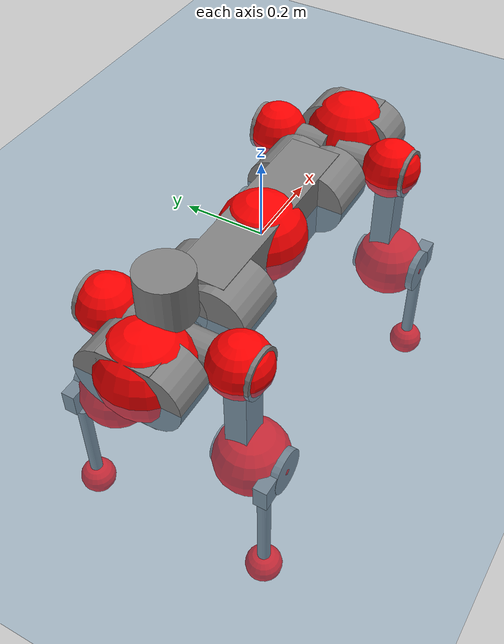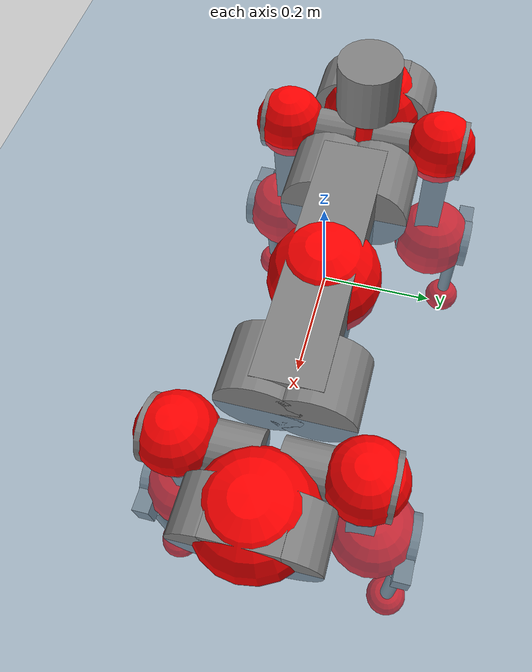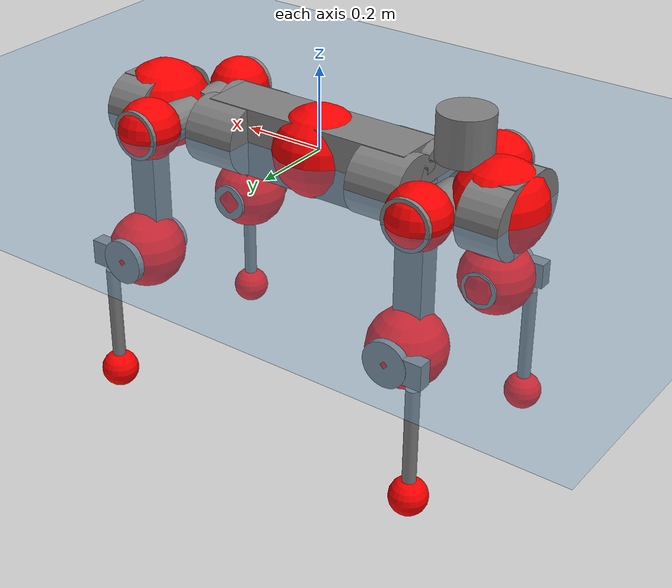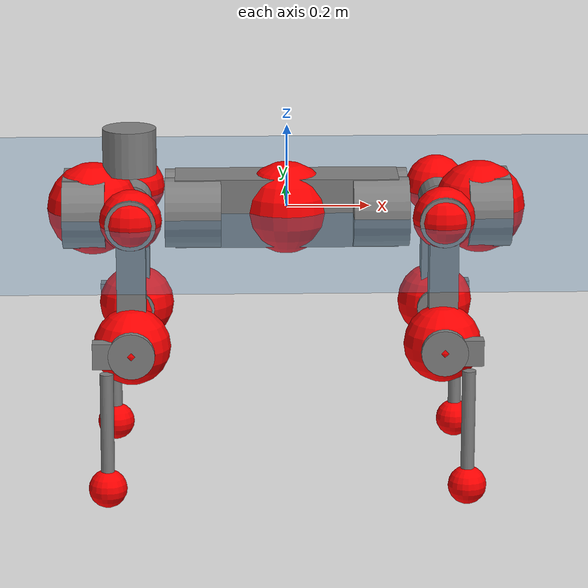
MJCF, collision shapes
<mujoco model="anymal_c">
  <compiler angle="radian" assetdir="assets" balanceinertia="true" inertiafromgeom="false"/>

  <option timestep="0.005" density="1.2" viscosity="2e-05"/>

  <size nkey="1"/>

  <visual>
    <quality shadowsize="8192"/>
    <map shadowclip="0.5"/>
  </visual>

  <default>
    <default class="/">
      <material specular="0" shininess="0.25"/>
      <geom contype="0" conaffinity="0" group="1" solref="-1000 -80"/>
      <site size="0.01 0.005 0.005" group="5"/>
      <general forcelimited="true" forcerange="-80 80" biastype="affine" gainprm="80" biasprm="0 -80 -2"/>
      <default class="anymal_c">
        <joint armature="0.01" damping="0.01" frictionloss="0.1"/>
        <default class="visual">
          <geom type="mesh" group="2"/>
          <default class="visual_zflip"/>
        </default>
        <default class="collision">
          <geom type="cylinder" group="3"/>
          <default class="foot">
            <geom size="0.03 0 0" type="sphere" condim="6" priority="1" friction="0.8 0.02 0.01" solimp="0.015 1 0.03"/>
          </default>
        </default>
      </default>
      <default class="reward_collision_sphere">
        <geom group="5" rgba="1 0 0 1"/>
      </default>
    </default>
  </default>

  <asset>
    <texture type="skybox" colorspace="auto" name="//unnamed_texture_0" builtin="gradient" rgb1="0.95 0.95 0.95" rgb2="0.95 0.95 0.95" width="100" height="600"/>
    <texture type="2d" colorspace="auto" name="texplane" builtin="checker" rgb1="0.345 0.575 0.748" rgb2="0.345 0.575 0.748" markrgb="1 1 1" width="512" height="512"/>
    <texture type="2d" colorspace="linear" name="base" file="base.png"/>
    <texture type="2d" colorspace="linear" name="top_shell" file="top_shell.png"/>
    <texture type="2d" colorspace="linear" name="bottom_shell" file="bottom_shell.png"/>
    <texture type="2d" colorspace="linear" name="remote" file="remote.png"/>
    <texture type="2d" colorspace="linear" name="hatch" file="hatch.png"/>
    <texture type="2d" colorspace="linear" name="handle" file="handle.png"/>
    <texture type="2d" colorspace="linear" name="face" file="face.png"/>
    <texture type="2d" colorspace="linear" name="battery" file="battery.png"/>
    <texture type="2d" colorspace="linear" name="lidar_cage" file="lidar_cage.png"/>
    <texture type="2d" colorspace="linear" name="depth_camera" file="depth_camera.png"/>
    <texture type="2d" colorspace="linear" name="wide_angle_camera" file="wide_angle_camera.png"/>
    <texture type="2d" colorspace="linear" name="lidar" file="lidar.png"/>
    <texture type="2d" colorspace="linear" name="drive" file="drive.png"/>
    <texture type="2d" colorspace="linear" name="hip_l" file="hip_l.png"/>
    <texture type="2d" colorspace="linear" name="shank_l" file="shank_l.png"/>
    <texture type="2d" colorspace="linear" name="foot" file="foot.png"/>
    <texture type="2d" colorspace="linear" name="thigh" file="thigh.png"/>
    <texture type="2d" colorspace="linear" name="shank_r" file="shank_r.png"/>
    <texture type="2d" colorspace="linear" name="hip_r" file="hip_r.png"/>
    <material name="MatPlane" class="/" texture="texplane" texuniform="true" texrepeat="2 2" specular="0.9" shininess="0.5"/>
    <material name="black_plastic" class="/" rgba="0.007 0.007 0.007 1"/>
    <material name="green" class="/" rgba="0.052 0.178 0.033 1"/>
    <material name="red" class="/" rgba="0.178 0.006 0.005 1"/>
    <material name="yellow" class="/" rgba="0.178 0.119 0.006 1"/>
    <material name="lwl" class="/" rgba="0.8 0.8 0.8 1"/>
    <material name="base" class="/" texture="base"/>
    <material name="top_shell" class="/" texture="top_shell"/>
    <material name="bottom_shell" class="/" texture="bottom_shell"/>
    <material name="hip_l" class="/" texture="hip_l"/>
    <material name="thigh" class="/" texture="thigh"/>
    <material name="shank_l" class="/" texture="shank_l"/>
    <material name="foot" class="/" texture="foot"/>
    <material name="hip_r" class="/" texture="hip_r"/>
    <material name="shank" class="/" texture="shank_r"/>
    <material name="hatch" class="/" texture="hatch"/>
    <material name="remote" class="/" texture="remote"/>
    <material name="handle" class="/" texture="handle"/>
    <material name="face" class="/" texture="face"/>
    <material name="depth_camera" class="/" texture="depth_camera"/>
    <material name="wide_angle_camera" class="/" texture="wide_angle_camera"/>
    <material name="battery" class="/" texture="battery"/>
    <material name="lidar_cage" class="/" texture="lidar_cage"/>
    <material name="lidar" class="/" texture="lidar"/>
    <material name="drive" class="/" texture="drive"/>
    <mesh name="base_0" class="/" file="base_0.obj"/>
    <mesh name="base_1" class="/" file="base_1.obj"/>
    <mesh name="base_2" class="/" file="base_2.obj"/>
    <mesh name="base_3" class="/" file="base_3.obj"/>
    <mesh name="base_4" class="/" file="base_4.obj"/>
    <mesh name="base_5" class="/" file="base_5.obj"/>
    <mesh name="top_shell" class="/" file="top_shell.obj"/>
    <mesh name="bottom_shell" class="/" file="bottom_shell.obj"/>
    <mesh name="remote" class="/" file="remote.obj"/>
    <mesh name="handle" class="/" file="handle.obj"/>
    <mesh name="face" class="/" file="face.obj"/>
    <mesh name="wide_angle_camera" class="/" file="wide_angle_camera.obj"/>
    <mesh name="depth_camera" class="/" file="depth_camera.obj"/>
    <mesh name="battery" class="/" file="battery.obj"/>
    <mesh name="lidar_cage" class="/" file="lidar_cage.obj"/>
    <mesh name="lidar" class="/" file="lidar.obj"/>
    <mesh name="drive" class="/" file="drive.obj"/>
    <mesh name="hip_l" class="/" file="hip_l.obj"/>
    <mesh name="thigh" class="/" file="thigh.obj"/>
    <mesh name="shank_l" class="/" file="shank_l.obj"/>
    <mesh name="foot" class="/" file="foot.obj"/>
    <mesh name="hip_r" class="/" file="hip_r.obj"/>
    <mesh name="hatch" class="/" file="hatch.obj"/>
    <mesh name="shank_r" class="/" file="shank_r.obj"/>
  </asset>

  <worldbody>
    <geom name="floor" class="/" size="100 100 0.125" type="plane" group="0" material="MatPlane"/>
    <light name="toplight_shadow" class="/" pos="0 0 5" dir="0.0990148 0.0990148 -0.990148" type="directional" ambient="0.04 0.04 0.04" diffuse="0.55 0.55 0.55" specular="0.12 0.12 0.12"/>
    <light name="toplight_fill" class="/" pos="0 0 5" dir="0.0990148 0.0990148 -0.990148" type="directional" castshadow="false" ambient="0.04 0.04 0.04" diffuse="0.3 0.3 0.3" specular="0.08 0.08 0.08"/>
    <body name="trunk" childclass="anymal_c" pos="-0.00104831 -9.4869e-06 -0.00282745" quat="1 0.000343679 0.000234815 -0.000252013">
      <inertial pos="-0.000229655 -0.00228967 0.0537607" quat="0.495429 0.502982 0.501901 0.499654" mass="15.4885" diaginertia="0.801012 0.0904559 0.306279"/>
      <joint name="//unnamed_joint_0" type="free" armature="0" damping="0" frictionloss="0"/>
      <geom name="//unnamed_geom_1" class="visual" material="green" mesh="base_0"/>
      <geom name="//unnamed_geom_2" class="visual" material="yellow" mesh="base_1"/>
      <geom name="//unnamed_geom_3" class="visual" material="red" mesh="base_2"/>
      <geom name="//unnamed_geom_4" class="visual" material="black_plastic" mesh="base_3"/>
      <geom name="//unnamed_geom_5" class="visual" material="lwl" mesh="base_4"/>
      <geom name="//unnamed_geom_6" class="visual" material="base" mesh="base_5"/>
      <geom name="trunk_1" class="collision" size="0.268024 0.0646955 0.0831799" type="box"/>
      <geom name="trunk_2" class="collision" size="0.0831799 0.067006" pos="0.225075 0.0472637 0" quat="0.707107 0 0.707107 0"/>
      <geom name="trunk_3" class="collision" size="0.0831799 0.067006" pos="-0.225075 0.0472637 0" quat="0.707107 0 0.707107 0"/>
      <geom name="trunk_4" class="collision" size="0.0831799 0.067006" pos="0.225075 -0.0472637 0" quat="0.707107 0 0.707107 0"/>
      <geom name="trunk_5" class="collision" size="0.0831799 0.067006" pos="-0.225075 -0.0472637 0" quat="0.707107 0 0.707107 0"/>
      <geom name="//unnamed_geom_12" class="visual" material="top_shell" mesh="top_shell"/>
      <geom name="//unnamed_geom_13" class="visual" material="bottom_shell" mesh="bottom_shell"/>
      <geom name="//unnamed_geom_14" class="visual" material="remote" mesh="remote"/>
      <geom name="//unnamed_geom_15" class="visual" material="handle" mesh="handle"/>
      <geom name="//unnamed_geom_16" class="visual" pos="0.428936 0 0" quat="1 0 0 0" material="face" mesh="face"/>
      <geom name="trunk_6" class="collision" size="0.0508321 0.0646955 0.0831799" pos="0.485851 0 0" type="box"/>
      <geom name="//unnamed_geom_18" class="collision" size="0.0831799 0.0508321" pos="0.485851 0.0472637 0" quat="0.707107 0 0.707107 0"/>
      <geom name="//unnamed_geom_19" class="collision" size="0.0831799 0.0508321" pos="0.485851 -0.0472637 0" quat="0.707107 0 0.707107 0"/>
      <geom name="//unnamed_geom_20" class="visual" pos="0.477729 0 -0.0312405" quat="0.965926 0 0.258819 0" material="depth_camera" mesh="depth_camera"/>
      <geom name="//unnamed_geom_21" class="visual" pos="0.530866 0 0.0159077" material="wide_angle_camera" mesh="wide_angle_camera"/>
      <geom name="//unnamed_geom_22" class="visual_zflip" pos="-0.428936 0 0" quat="0 0 0 1" material="face" mesh="face"/>
      <geom name="trunk_7" class="collision" size="0.0508321 0.0646955 0.0831799" pos="-0.485851 0 0" quat="0 0 0 1" type="box"/>
      <geom name="//unnamed_geom_24" class="collision" size="0.0831799 0.0508321" pos="-0.485851 -0.0472637 0" quat="0 -0.707107 0 0.707107"/>
      <geom name="//unnamed_geom_25" class="collision" size="0.0831799 0.0508321" pos="-0.485851 0.0472637 0" quat="0 -0.707107 0 0.707107"/>
      <geom name="//unnamed_geom_26" class="visual" pos="-0.477729 0 -0.0312405" quat="0 -0.258819 0 0.965926" material="depth_camera" mesh="depth_camera"/>
      <geom name="//unnamed_geom_27" class="visual_zflip" pos="-0.530866 0 0.0159077" quat="0 0 0 1" material="wide_angle_camera" mesh="wide_angle_camera"/>
      <geom name="//unnamed_geom_28" class="visual" material="battery" mesh="battery"/>
      <geom name="//unnamed_geom_29" class="visual" pos="0 0.0469075 0.0306583" quat="0.683013 -0.183013 0.183013 0.683013" material="depth_camera" mesh="depth_camera"/>
      <geom name="//unnamed_geom_30" class="visual" pos="0 -0.0469075 0.0306583" quat="0.683013 0.183013 0.183013 -0.683013" material="depth_camera" mesh="depth_camera"/>
      <geom name="//unnamed_geom_31" class="visual" pos="-0.376677 0 0.0781041" quat="1 0 0 0" material="lidar_cage" mesh="lidar_cage"/>
      <geom name="trunk_8" class="collision" size="0.0646955 0.0554533" pos="-0.376677 0 0.141862"/>
      <geom name="//unnamed_geom_33" class="visual" pos="-0.376677 -0.000141289 0.151107" quat="0.707107 0 0 -0.707107" material="lidar" mesh="lidar"/>
      <geom name="//unnamed_geom_34" class="visual" pos="0.310345 0.070358 -6.68346e-09" quat="0.258819 0.965926 0 0" material="drive" mesh="drive"/>
      <geom name="//unnamed_geom_35" class="visual" pos="0.310345 -0.070358 6.68346e-09" quat="0.258819 -0.965926 0 0" material="drive" mesh="drive"/>
      <geom name="//unnamed_geom_36" class="visual" pos="-0.310345 0.070358 6.68346e-09" quat="0 0 0.965926 -0.258819" material="drive" mesh="drive"/>
      <geom name="//unnamed_geom_37" class="visual" pos="-0.310345 -0.070358 -6.68346e-09" quat="0 0 -0.965926 -0.258819" material="drive" mesh="drive"/>
      <geom name="//unnamed_geom_38" class="visual" pos="0.12004 0 0.0775727" quat="1 0 0 0" material="hatch" mesh="hatch"/>
      <geom name="//unnamed_geom_39" class="reward_collision_sphere" size="0.110907"/>
      <geom name="//unnamed_geom_40" class="reward_collision_sphere" size="0.110907" pos="0.465672 0 0"/>
      <geom name="//unnamed_geom_41" class="reward_collision_sphere" size="0.110907" pos="-0.465672 0 0"/>
      <site name="imu" pos="0.251592 0.00943374 0.060226" size="0.00924221"/>
      <camera name="track" pos="0 -1.35039 0" quat="0.707107 0.707107 0 0" mode="trackcom"/>
      <camera name="ego_camera" pos="0.465672 0 -0.0425056" quat="-0.5 -0.5 0.5 0.5"/>
      <body name="LF_HIP" pos="0.310333 0.0702264 -0.00053945" quat="0.25908 0.965855 0.000485843 0.00125308">
        <inertial pos="0.0607699 -0.0125203 -0.0074674" quat="-0.129012 0.702579 -0.127305 0.688137" mass="2.16048" diaginertia="0.00685507 0.000693963 0.00457521"/>
        <joint name="LF_HAA" pos="0 0 0" axis="0.999872 0.0158559 -0.00203099" range="-0.699418 0.540819" armature="0.010023" damping="0.00435714" frictionloss="0.0936085"/>
        <geom name="//unnamed_geom_42" class="visual" pos="0 -0.000393158 6.45758e-05" quat="0.258819 -0.965926 0 0" material="hip_l" mesh="hip_l"/>
        <geom name="//unnamed_geom_43" class="visual" pos="0.0619861 -0.0705119 -0.0435758" quat="0.183013 -0.683013 0.683013 0.183013" material="drive" mesh="drive"/>
        <geom name="//unnamed_geom_44" class="collision" size="0.046211 0.0646955" pos="0.0619861 -0.00807521 -0.00733753" quat="-0.353553 -0.612372 0.612372 -0.353553"/>
        <body name="LF_THIGH" pos="0.0626711 -0.0498838 -0.0444878" quat="0.183471 -0.68258 0.683153 0.183645">
          <inertial pos="0.0345197 0.000257298 -0.259058" quat="0.99295 -0.00841685 -0.0833082 0.0839022" mass="2.47958" diaginertia="0.0346022 0.00414533 0.00562862"/>
          <joint name="LF_HFE" pos="0 0 0" axis="0.999959 0.00826538 -0.00369937" stiffness="0.0027904" range="-3.16151 3.13363" armature="0.00904048" damping="0.00225794" frictionloss="0.0822431"/>
          <geom name="//unnamed_geom_45" class="visual" pos="0.00715524 1.1275e-05 0" quat="0.707107 0 0 -0.707107" material="thigh" mesh="thigh"/>
          <geom name="//unnamed_geom_46" class="collision" size="0.0600744 0.0369688" pos="0.0413931 0 0" quat="0.5 0.5 -0.5 -0.5"/>
          <geom name="//unnamed_geom_47" class="collision" size="0.0346583 0.0277266 0.130605" pos="0.0310448 0 -0.150166" quat="0.707107 0 0 -0.707107" type="box"/>
          <geom name="//unnamed_geom_48" class="visual" pos="0.103793 0 -0.302852" quat="1 0 0 0" material="drive" mesh="drive"/>
          <geom name="//unnamed_geom_49" class="collision" size="0.046211 0.0646955" pos="0.0313553 0 -0.302852" quat="0.707107 0 0.707107 0"/>
          <geom name="//unnamed_geom_50" class="reward_collision_sphere" size="0.0739377" pos="0.0258707 0 0"/>
          <body name="LF_SHANK" pos="0.106965 -0.00296645 -0.304366" quat="0.999999 -0.00047449 0.00103582 -0.000682056">
            <inertial pos="0.00543445 -0.0415433 -0.0861975" quat="0.992559 -0.119012 -0.00118262 -0.025738" mass="0.452798" diaginertia="0.0116883 0.0012913 0.00146321"/>
            <joint name="LF_KFE" pos="0 0 0" axis="0.999981 0.000140831 0.00612328" range="-3.19715 3.17422" armature="0.0104259" damping="0" frictionloss="0.105468"/>
            <geom name="//unnamed_geom_51" class="visual" pos="0.00233317 0.0124406 0" quat="0.707107 0 0 -0.707107" material="shank_l" mesh="shank_l"/>
            <geom name="LF_kfe_act" class="collision" size="0.0554533 0.0184844" pos="0.0206965 0 0" quat="0.5 0.5 -0.5 -0.5"/>
            <geom name="//unnamed_geom_53" class="collision" size="0.0531418 0.0311925 0.0175602" pos="0.0206965 -0.0388231 0" quat="0.5 0.5 -0.5 -0.5" type="box"/>
            <geom name="//unnamed_geom_54" class="visual" pos="0.0135039 -0.0553744 -0.35914" quat="0.382683 0 0 -0.92388" material="foot" mesh="foot"/>
            <geom name="LF_calf" class="collision" size="0.0161739 0.130548" pos="0.0135045 -0.0593835 -0.17957" quat="0.707107 0 0 -0.707107"/>
            <geom name="LF_foot" class="foot" size="0.0265256" pos="0.0135045 -0.0593835 -0.335231" quat="0.707107 0 0 -0.707107"/>
            <geom name="//unnamed_geom_57" class="reward_collision_sphere" size="0.0924221" pos="-0.0517413 0 0"/>
            <geom name="//unnamed_geom_58" class="reward_collision_sphere" size="0.046211" pos="0.0135045 -0.0593835 -0.335231"/>
            <site name="LF_foot" class="foot" pos="0.0135045 -0.0593835 -0.335231" quat="0.707107 0 0 -0.707107" size="0.00924221"/>
          </body>
        </body>
      </body>
      <body name="RF_HIP" pos="0.308173 -0.0705086 -0.00162147" quat="0.258704 -0.965956 0.00065968 -9.40995e-05">
        <inertial pos="0.0610031 0.0119943 -0.0100267" quat="0.134627 0.678648 0.128552 0.710483" mass="2.2563" diaginertia="0.00699586 0.000739129 0.00459683"/>
        <joint name="RF_HAA" pos="0 0 0" axis="0.999942 -0.0101347 0.00372158" range="-0.531932 0.712007" armature="0.00826313" damping="0.00873828" frictionloss="0.0824527"/>
        <geom name="//unnamed_geom_59" class="visual" pos="0 0.000393155 6.45757e-05" quat="0.258819 0.965926 0 0" material="hip_r" mesh="hip_r"/>
        <geom name="//unnamed_geom_60" class="visual" pos="0.0619861 0.0705119 -0.0435758" quat="0.183013 0.683013 0.683013 -0.183013" material="drive" mesh="drive"/>
        <geom name="//unnamed_geom_61" class="collision" size="0.046211 0.0646955" pos="0.0619861 0.00807521 -0.00733753" quat="-0.353553 0.612372 0.612372 0.353553"/>
        <body name="RF_THIGH" pos="0.0602594 0.0507576 -0.0472705" quat="0.183131 0.682967 0.682951 -0.183295">
          <inertial pos="0.0321551 -0.000664931 -0.259717" quat="0.993252 0.0036267 -0.0731024 0.0899646" mass="2.29195" diaginertia="0.0342329 0.00419636 0.00564063"/>
          <joint name="RF_HFE" pos="0 0 0" axis="0.999965 -0.00769571 0.00330567" stiffness="0.00663504" range="-3.11735 3.19794" armature="0.00943606" damping="0" frictionloss="0.0951092"/>
          <geom name="//unnamed_geom_62" class="visual" pos="0.00715524 1.1275e-05 0" quat="0.707107 0 0 -0.707107" material="thigh" mesh="thigh"/>
          <geom name="//unnamed_geom_63" class="collision" size="0.0600744 0.0369688" pos="0.0413931 0 0" quat="0.5 0.5 0.5 0.5"/>
          <geom name="//unnamed_geom_64" class="collision" size="0.0346583 0.0277266 0.130605" pos="0.0310448 0 -0.150166" quat="0.707107 0 0 0.707107" type="box"/>
          <geom name="//unnamed_geom_65" class="visual" pos="0.103793 0 -0.302852" quat="1 0 0 0" material="drive" mesh="drive"/>
          <geom name="//unnamed_geom_66" class="collision" size="0.046211 0.0646955" pos="0.0313553 0 -0.302852" quat="0.707107 0 0.707107 0"/>
          <geom name="//unnamed_geom_67" class="reward_collision_sphere" size="0.0739377" pos="0.0258707 0 0"/>
          <body name="RF_SHANK" pos="0.105286 -0.00148114 -0.300556" quat="1 0.000221253 -0.000528129 -5.94882e-05">
            <inertial pos="0.00542598 0.0422696 -0.08369" quat="0.9919 0.125566 0.00564132 0.0183144" mass="0.469635" diaginertia="0.0118972 0.00125826 0.00150457"/>
            <joint name="RF_KFE" pos="0 0 0" axis="0.999938 -0.0102021 -0.00457003" range="-3.18823 3.19236" armature="0.00866458" damping="0.00368643" frictionloss="0.0854751"/>
            <geom name="//unnamed_geom_68" class="visual" pos="0.00233316 -0.0124406 0" quat="0.707107 0 0 0.707107" material="shank" mesh="shank_r"/>
            <geom name="RF_kfe_act" class="collision" size="0.0554533 0.0184844" pos="0.0206965 0 0" quat="0.5 0.5 0.5 0.5"/>
            <geom name="//unnamed_geom_70" class="collision" size="0.0531418 0.0311925 0.0175602" pos="0.0206965 0.0388231 0" quat="0.5 0.5 0.5 0.5" type="box"/>
            <geom name="//unnamed_geom_71" class="visual" pos="0.0135051 0.0553744 -0.35914" quat="0.382683 0 0 0.92388" material="foot" mesh="foot"/>
            <geom name="RF_calf" class="collision" size="0.0161739 0.130548" pos="0.0135045 0.0593835 -0.17957" quat="0.707107 0 0 0.707107"/>
            <geom name="RF_foot" class="foot" size="0.0275812" pos="0.0135045 0.0593835 -0.335231" quat="0.707107 0 0 0.707107"/>
            <geom name="//unnamed_geom_74" class="reward_collision_sphere" size="0.0924221" pos="-0.0517413 0 0"/>
            <geom name="//unnamed_geom_75" class="reward_collision_sphere" size="0.046211" pos="0.0135045 0.0593835 -0.335231"/>
            <site name="RF_foot" class="foot" pos="0.0135045 0.0593835 -0.335231" quat="0.707107 0 0 0.707107" size="0.00924221"/>
          </body>
        </body>
      </body>
      <body name="LH_HIP" pos="-0.311457 0.0725632 -0.000731389" quat="0.00036752 0.000134632 0.965895 -0.258935">
        <inertial pos="0.0610746 0.0121212 -0.00979016" quat="0.128228 0.671249 0.125885 0.719121" mass="2.20252" diaginertia="0.00661445 0.000681771 0.00420521"/>
        <joint name="LH_HAA" pos="0 0 0" axis="0.99995 0.00831162 -0.00550321" range="-0.460725 0.710637" armature="0.00815959" damping="0" frictionloss="0.0956679"/>
        <geom name="//unnamed_geom_76" class="visual" pos="0 0.000393155 6.45757e-05" quat="-0.258819 -0.965926 0 0" material="hip_r" mesh="hip_r"/>
        <geom name="//unnamed_geom_77" class="visual" pos="0.0619861 0.0705119 -0.0435758" quat="0.183013 0.683013 0.683013 -0.183013" material="drive" mesh="drive"/>
        <geom name="//unnamed_geom_78" class="collision" size="0.046211 0.0646955" pos="0.0619861 0.00807521 -0.00733753" quat="-0.353553 0.612372 0.612372 0.353553"/>
        <body name="LH_THIGH" pos="0.0585408 0.0481332 -0.0456089" quat="0.182925 0.682864 0.683168 -0.183076">
          <inertial pos="0.0321241 0.00247789 -0.260247" quat="0.993023 -0.00961433 -0.078055 0.0878699" mass="2.42929" diaginertia="0.0361272 0.00405813 0.00576259"/>
          <joint name="LH_HFE" pos="0 0 0" axis="0.999947 0.0100721 -0.00231069" stiffness="0.00968848" range="-3.13402 3.15941" armature="0.0080467" damping="0" frictionloss="0.0998609"/>
          <geom name="//unnamed_geom_79" class="visual" pos="0.00715524 1.1275e-05 0" quat="0.707107 0 0 -0.707107" material="thigh" mesh="thigh"/>
          <geom name="//unnamed_geom_80" class="collision" size="0.0600744 0.0369688" pos="0.0413931 0 0" quat="0.5 0.5 -0.5 -0.5"/>
          <geom name="//unnamed_geom_81" class="collision" size="0.0346583 0.0277266 0.130605" pos="0.0310448 0 -0.150166" quat="0.707107 0 0 -0.707107" type="box"/>
          <geom name="//unnamed_geom_82" class="visual" pos="0.103793 0 -0.302852" quat="1 0 0 0" material="drive" mesh="drive"/>
          <geom name="//unnamed_geom_83" class="collision" size="0.046211 0.0646955" pos="0.0313553 0 -0.302852" quat="0.707107 0 0.707107 0"/>
          <geom name="//unnamed_geom_84" class="reward_collision_sphere" size="0.0739377" pos="0.0258707 0 0"/>
          <body name="LH_SHANK" pos="0.100622 -0.000761817 -0.305364" quat="0.999999 -0.000996766 -0.000679244 0.000138482">
            <inertial pos="0.00560986 0.04128 -0.085794" quat="0.993288 0.112727 -0.000172781 0.0259105" mass="0.466904" diaginertia="0.0119912 0.00129015 0.0015051"/>
            <joint name="LH_KFE" pos="0 0 0" axis="0.999801 0.0134002 0.0147784" range="-3.16001 3.14498" armature="0.00810665" damping="0.00973812" frictionloss="0.105553"/>
            <geom name="//unnamed_geom_85" class="visual" pos="0.00233316 -0.0124406 0" quat="-0.707107 0 0 -0.707107" material="shank" mesh="shank_r"/>
            <geom name="LH_kfe_act" class="collision" size="0.0554533 0.0184844" pos="0.0206965 0 0" quat="0.5 0.5 -0.5 -0.5"/>
            <geom name="//unnamed_geom_87" class="collision" size="0.0531418 0.0311925 0.0175602" pos="0.0206965 0.0388231 0" quat="0.5 0.5 -0.5 -0.5" type="box"/>
            <geom name="//unnamed_geom_88" class="visual" pos="0.0135051 0.0553744 -0.35914" quat="-0.382683 0 0 -0.92388" material="foot" mesh="foot"/>
            <geom name="LH_calf" class="collision" size="0.0161739 0.130548" pos="0.0135045 0.0593835 -0.17957" quat="0.707107 0 0 -0.707107"/>
            <geom name="LH_foot" class="foot" size="0.0299563" pos="0.0135045 0.0593835 -0.335231" quat="0.707107 0 0 -0.707107"/>
            <geom name="//unnamed_geom_91" class="reward_collision_sphere" size="0.0924221" pos="-0.0517413 0 0"/>
            <geom name="//unnamed_geom_92" class="reward_collision_sphere" size="0.046211" pos="0.0135045 0.0593835 -0.335231"/>
            <site name="LH_foot" class="foot" pos="0.0135045 0.0593835 -0.335231" quat="0.707107 0 0 -0.707107" size="0.00924221"/>
          </body>
        </body>
      </body>
      <body name="RH_HIP" pos="-0.310725 -0.0727653 -0.0012188" quat="0.00056529 -0.000851303 -0.966083 -0.258231">
        <inertial pos="0.0567497 -0.0105728 -0.00667579" quat="-0.131003 0.709508 -0.132602 0.679598" mass="2.13029" diaginertia="0.00677433 0.000667496 0.00423766"/>
        <joint name="RH_HAA" pos="0 0 0" axis="1 0.000769692 -0.000100653" range="-0.771733 0.518466" armature="0.0089843" damping="0" frictionloss="0.0945518"/>
        <geom name="//unnamed_geom_93" class="visual" pos="0 -0.000393158 6.45758e-05" quat="-0.258819 0.965926 0 0" material="hip_l" mesh="hip_l"/>
        <geom name="//unnamed_geom_94" class="visual" pos="0.0619861 -0.0705119 -0.0435758" quat="-0.183013 0.683013 -0.683013 -0.183013" material="drive" mesh="drive"/>
        <geom name="//unnamed_geom_95" class="collision" size="0.046211 0.0646955" pos="0.0619861 -0.00807521 -0.00733753" quat="0.353553 0.612372 -0.612372 0.353553"/>
        <body name="RH_THIGH" pos="0.060782 -0.0514763 -0.0437722" quat="-0.182968 0.682989 -0.683104 -0.182805">
          <inertial pos="0.0350702 -0.00046315 -0.261374" quat="0.993198 -0.00442192 -0.0807294 0.0837874" mass="2.35624" diaginertia="0.0344612 0.00412188 0.00562036"/>
          <joint name="RH_HFE" pos="0 0 0" axis="0.999961 0.00832854 -0.0028512" range="-3.15846 3.1577" armature="0.00831073" damping="0" frictionloss="0.0947996"/>
          <geom name="//unnamed_geom_96" class="visual" pos="0.00715524 1.1275e-05 0" quat="0.707107 0 0 -0.707107" material="thigh" mesh="thigh"/>
          <geom name="//unnamed_geom_97" class="collision" size="0.0600744 0.0369688" pos="0.0413931 0 0" quat="0.5 0.5 0.5 0.5"/>
          <geom name="//unnamed_geom_98" class="collision" size="0.0346583 0.0277266 0.130605" pos="0.0310448 0 -0.150166" quat="0.707107 0 0 0.707107" type="box"/>
          <geom name="//unnamed_geom_99" class="visual" pos="0.103793 0 -0.302852" quat="1 0 0 0" material="drive" mesh="drive"/>
          <geom name="//unnamed_geom_100" class="collision" size="0.046211 0.0646955" pos="0.0313553 0 -0.302852" quat="0.707107 0 0.707107 0"/>
          <geom name="//unnamed_geom_101" class="reward_collision_sphere" size="0.0739377" pos="0.0258707 0 0"/>
          <body name="RH_SHANK" pos="0.102007 0.000618981 -0.300859" quat="0.999999 -0.000868959 -0.000817581 -1.21715e-05">
            <inertial pos="0.00396411 -0.0410539 -0.0866402" quat="0.993116 -0.111583 0.00464529 -0.0353411" mass="0.453152" diaginertia="0.0115007 0.0013198 0.00148487"/>
            <joint name="RH_KFE" pos="0 0 0" axis="0.999975 -0.00690637 -0.00180818" stiffness="0.00964191" range="-3.11396 3.10942" armature="0.00858307" damping="0.0123906" frictionloss="0.092885"/>
            <geom name="//unnamed_geom_102" class="visual" pos="0.00233317 0.0124406 0" quat="0.707107 0 0 -0.707107" material="shank_l" mesh="shank_l"/>
            <geom name="RH_kfe_act" class="collision" size="0.0554533 0.0184844" pos="0.0206965 0 0" quat="0.5 0.5 0.5 0.5"/>
            <geom name="//unnamed_geom_104" class="collision" size="0.0531418 0.0311925 0.0175602" pos="0.0206965 -0.0388231 0" quat="0.5 0.5 0.5 0.5" type="box"/>
            <geom name="//unnamed_geom_105" class="visual" pos="0.0135039 -0.0553744 -0.35914" quat="0.382683 0 0 -0.92388" material="foot" mesh="foot"/>
            <geom name="RH_calf" class="collision" size="0.0161739 0.130548" pos="0.0135045 -0.0593835 -0.17957" quat="0.707107 0 0 0.707107"/>
            <geom name="RH_foot" class="foot" size="0.0233797" pos="0.0135045 -0.0593835 -0.335231" quat="0.707107 0 0 0.707107"/>
            <geom name="//unnamed_geom_108" class="reward_collision_sphere" size="0.0924221" pos="-0.0517413 0 0"/>
            <geom name="//unnamed_geom_109" class="reward_collision_sphere" size="0.046211" pos="0.0135045 -0.0593835 -0.335231"/>
            <site name="RH_foot" class="foot" pos="0.0135045 -0.0593835 -0.335231" quat="0.707107 0 0 0.707107" size="0.00924221"/>
          </body>
        </body>
      </body>
    </body>
  </worldbody>

  <contact>
    <pair class="/" geom1="floor" geom2="LF_foot" name="//unnamed_contact_0"/>
    <pair class="/" geom1="floor" geom2="RF_foot" name="//unnamed_contact_1"/>
    <pair class="/" geom1="floor" geom2="LH_foot" name="//unnamed_contact_2"/>
    <pair class="/" geom1="floor" geom2="RH_foot" name="//unnamed_contact_3"/>
  </contact>

  <actuator>
    <general name="LF_HAA" class="/" joint="LF_HAA" forcerange="-76.7324 76.7324" gainprm="71.6134" biasprm="0 -71.6134 -1.7355"/>
    <general name="LF_HFE" class="/" joint="LF_HFE" forcerange="-66.5736 66.5736" gainprm="71.6134" biasprm="0 -71.6134 -1.7355"/>
    <general name="LF_KFE" class="/" joint="LF_KFE" forcerange="-73.7245 73.7245" gainprm="71.6134" biasprm="0 -71.6134 -1.7355"/>
    <general name="RF_HAA" class="/" joint="RF_HAA" forcerange="-67.1247 67.1247" gainprm="71.6134" biasprm="0 -71.6134 -1.7355"/>
    <general name="RF_HFE" class="/" joint="RF_HFE" forcerange="-83.0538 83.0538" gainprm="71.6134" biasprm="0 -71.6134 -1.7355"/>
    <general name="RF_KFE" class="/" joint="RF_KFE" forcerange="-67.7295 67.7295" gainprm="71.6134" biasprm="0 -71.6134 -1.7355"/>
    <general name="LH_HAA" class="/" joint="LH_HAA" forcerange="-74.5573 74.5573" gainprm="71.6134" biasprm="0 -71.6134 -1.7355"/>
    <general name="LH_HFE" class="/" joint="LH_HFE" forcerange="-67.9302 67.9302" gainprm="71.6134" biasprm="0 -71.6134 -1.7355"/>
    <general name="LH_KFE" class="/" joint="LH_KFE" forcerange="-75.4286 75.4286" gainprm="71.6134" biasprm="0 -71.6134 -1.7355"/>
    <general name="RH_HAA" class="/" joint="RH_HAA" forcerange="-71.4019 71.4019" gainprm="71.6134" biasprm="0 -71.6134 -1.7355"/>
    <general name="RH_HFE" class="/" joint="RH_HFE" forcerange="-70.1958 70.1958" gainprm="71.6134" biasprm="0 -71.6134 -1.7355"/>
    <general name="RH_KFE" class="/" joint="RH_KFE" forcerange="-81.2396 81.2396" gainprm="71.6134" biasprm="0 -71.6134 -1.7355"/>
  </actuator>

  <sensor>
    <gyro site="imu" name="imu_angular_velocity"/>
    <velocimeter site="imu" name="imu_linear_velocity"/>
    <framelinvel objtype="site" objname="LF_foot" name="LF_foot_global_linear_velocity"/>
    <framelinvel objtype="site" objname="RF_foot" name="RF_foot_global_linear_velocity"/>
    <framelinvel objtype="site" objname="LH_foot" name="LH_foot_global_linear_velocity"/>
    <framelinvel objtype="site" objname="RH_foot" name="RH_foot_global_linear_velocity"/>
  </sensor>

  <keyframe>
    <key name="home" qpos="0 0 0.55 1 0 0 0 0 0.4 -0.8 0 -0.4 0.8 0 -0.4 0.8 0 0.4 -0.8"/>
  </keyframe>
</mujoco>
